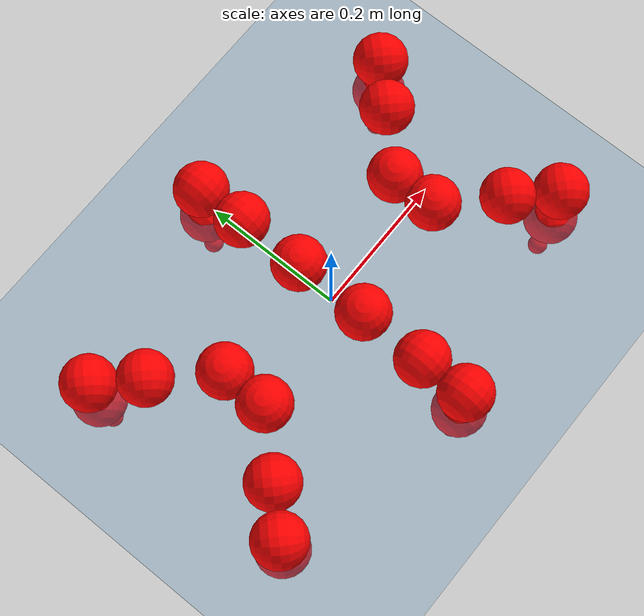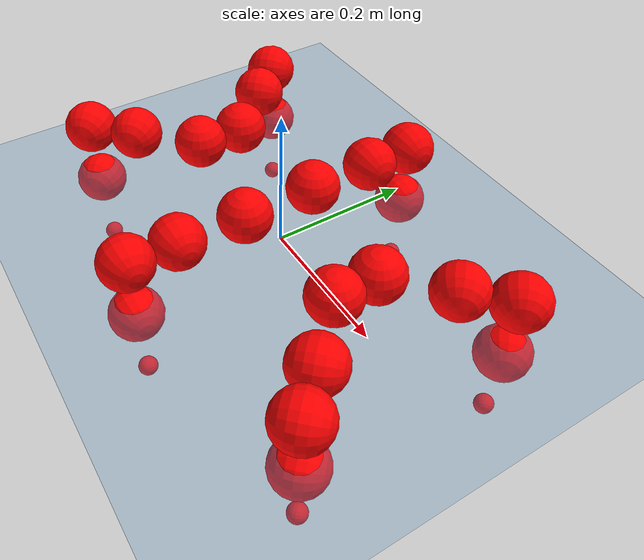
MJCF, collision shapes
<mujoco model="Golem">
  <compiler angle="radian" assetdir="assets" balanceinertia="true" inertiafromgeom="false"/>

  <option timestep="0.005" density="1.2" viscosity="2e-05"/>

  <size nkey="1"/>

  <visual>
    <quality shadowsize="8192"/>
    <map shadowclip="0.5"/>
  </visual>

  <default>
    <default class="/">
      <joint armature="0.01" damping="0.01" frictionloss="0.01"/>
      <geom contype="0" conaffinity="0" group="1" solref="-1000 -80"/>
      <site size="0.01 0.005 0.005" group="5"/>
      <general forcelimited="true" biastype="affine" gainprm="25" biasprm="0 -25 -0.5"/>
      <default class="visual">
        <geom type="mesh" group="2"/>
      </default>
      <default class="collision">
        <geom group="3"/>
      </default>
      <default class="foot">
        <geom size="0.01 0 0" condim="6" group="4" priority="1" solimp="0.015 1 0.01"/>
      </default>
      <default class="reward_collision_sphere">
        <geom group="5" rgba="1 0 0 1"/>
      </default>
    </default>
  </default>

  <asset>
    <texture type="skybox" colorspace="auto" name="//unnamed_texture_0" builtin="gradient" rgb1="0.95 0.95 0.95" rgb2="0.95 0.95 0.95" width="100" height="600"/>
    <texture type="2d" colorspace="auto" name="texplane" builtin="checker" rgb1="0.345 0.575 0.748" rgb2="0.345 0.575 0.748" markrgb="1 1 1" width="512" height="512"/>
    <material name="MatPlane" class="/" texture="texplane" texuniform="true" texrepeat="2 2" specular="0.9"/>
    <mesh name="body" class="/" file="body.stl" scale="0.001 0.001 0.001"/>
    <mesh name="coxa" class="/" file="coxa.stl" scale="0.001 0.001 0.001"/>
    <mesh name="femur" class="/" file="femur.stl" scale="0.001 0.001 0.001"/>
    <mesh name="tibia" class="/" file="tibia.stl" scale="0.001 0.001 0.001"/>
    <mesh name="tarsus" class="/" file="tarsus.stl" scale="0.001 0.001 0.001"/>
  </asset>

  <worldbody>
    <geom name="floor" class="/" size="100 100 0.125" type="plane" group="0" material="MatPlane"/>
    <light name="toplight_shadow" class="/" pos="0 0 5" dir="0.0990148 0.0990148 -0.990148" type="directional" ambient="0.04 0.04 0.04" diffuse="0.55 0.55 0.55" specular="0.12 0.12 0.12"/>
    <light name="toplight_fill" class="/" pos="0 0 5" dir="0.0990148 0.0990148 -0.990148" type="directional" castshadow="false" ambient="0.04 0.04 0.04" diffuse="0.3 0.3 0.3" specular="0.08 0.08 0.08"/>
    <body name="trunk" pos="-0.000475859 0.000149984 -0.000896776" quat="1 1.95933e-05 3.43917e-05 1.41217e-05">
      <inertial pos="0.000869546 -0.00088213 -0.00478342" quat="1 -4.35433e-05 -0.000221885 -0.000280542" mass="2.98163" diaginertia="0.0154041 0.00114106 0.0133463"/>
      <joint name="//unnamed_joint_0" type="free"/>
      <geom name="//unnamed_geom_1" class="/" pos="0 0 0.0679635" quat="1 0 0 0" type="mesh" rgba="0.9 0.9 0.9 1" mesh="body"/>
      <site name="imu" class="/" pos="0.140289 0.00422969 0.105253" size="0.00932978"/>
      <camera name="track" class="/" pos="0 -1.2972 0" quat="0.707107 0.707107 0 0" mode="trackcom"/>
      <camera name="ego_camera" class="/" pos="0.141493 0 0.106193" quat="-0.5 -0.5 0.5 0.5"/>
      <body name="coxa_RR" pos="-0.19353 -0.0549585 0.069048" quat="0.382693 8.28963e-05 0.000135649 -0.923875">
        <inertial pos="-9.01654e-05 -0.000614498 0.00106507" quat="0.999991 -0.000625776 0.00348341 -0.00249556" mass="0.161614" diaginertia="0.0152456 0.00115412 0.0135283"/>
        <joint name="coxa_joint_RR" class="/" pos="0 0 0" axis="-0.000467466 0.00201153 -0.999998" range="-3.14958 3.139" armature="0.00931909" damping="0.00408393" frictionloss="0.00912575"/>
        <geom name="//unnamed_geom_2" class="/" type="mesh" rgba="0.2 0.2 0.2 1" mesh="coxa"/>
        <geom name="//unnamed_geom_3" class="reward_collision_sphere" size="0.0373191" pos="-0.0326522 0 0"/>
        <body name="femur_RR" pos="0.0659762 0.00103949 -0.00124794" quat="0.49979 -0.50005 0.500058 0.500102">
          <inertial pos="0.000363605 -0.000402178 -0.000232703" quat="1 0.000193887 -2.33098e-05 -0.000300449" mass="0.160479" diaginertia="0.0150842 0.00113266 0.013327"/>
          <joint name="femur_joint_RR" class="/" pos="0 0 0" axis="0.000834476 -0.000157942 -1" range="-3.12268 3.12043" armature="0.00967599" damping="0.0002752" frictionloss="0.00931862"/>
          <geom name="//unnamed_geom_4" class="/" type="mesh" rgba="0.9 0.9 0.9 1" mesh="femur"/>
          <geom name="//unnamed_geom_5" class="reward_collision_sphere" size="0.0373191"/>
          <body name="tibia_RR" pos="0.000244677 -0.0711231 0.0013653" quat="2.02993e-05 1 -3.61417e-05 -6.56917e-06">
            <inertial pos="-0.000808716 0.00022752 0.000236552" quat="0.99999 0.00442625 -0.000567238 -7.53887e-05" mass="0.161709" diaginertia="0.0151221 0.0011282 0.013494"/>
            <joint name="tibia_joint_RR" class="/" pos="0 0 0" axis="0.000883092 -0.00320592 0.999994" range="-3.1233 3.11697" armature="0.00907787" damping="0" frictionloss="0.00954746"/>
            <geom name="//unnamed_geom_6" class="/" type="mesh" rgba="0.2 0.2 0.2 1" mesh="tibia"/>
            <geom name="//unnamed_geom_7" class="reward_collision_sphere" size="0.0373191"/>
            <body name="tarsus_RR" pos="0.096083 0.000361484 -0.000659598" quat="1 1.22376e-06 1.34276e-06 -3.4582e-06">
              <inertial pos="0.0662937 0.00187499 0.000195784" quat="0.500831 0.502693 0.497233 0.499228" mass="0.162107" diaginertia="0.015503 0.00114736 0.0135657"/>
              <joint name="tarsus_joint_RR" class="/" pos="0 0 0" axis="0.00746574 -0.00503422 0.999959" range="-3.12536 3.13812" armature="0.0091674" damping="0.0430887" frictionloss="0.00892676"/>
              <geom name="//unnamed_geom_8" class="/" type="mesh" rgba="0.9 0.9 0.9 1" mesh="tarsus"/>
              <geom name="foot_1" class="foot" size="0.00903091" pos="0.121902 0 0" quat="0 -0.707107 0 0.707107"/>
              <geom name="//unnamed_geom_10" class="reward_collision_sphere" size="0.0373191"/>
              <geom name="//unnamed_geom_11" class="reward_collision_sphere" size="0.0139947" pos="0.117004 0 0"/>
              <site name="foot_1" class="foot" pos="0.121902 0 0" quat="0 -0.707107 0 0.707107" size="0.00932978"/>
            </body>
          </body>
        </body>
      </body>
      <body name="coxa_RM" pos="-0.000688897 -0.0863904 0.0685028" quat="0.707161 2.73769e-05 -5.21867e-05 -0.707052">
        <inertial pos="-1.79216e-05 -0.000696937 0.000303143" quat="0.999999 0.000945433 -0.000878697 0.000273679" mass="0.164553" diaginertia="0.0153066 0.00115525 0.0135338"/>
        <joint name="coxa_joint_RM" class="/" pos="0 0 0" axis="-0.00222047 0.00259171 -0.999994" range="-3.14683 3.13686" armature="0.00919751" damping="0.0100484" frictionloss="0.00889803"/>
        <geom name="//unnamed_geom_12" class="/" type="mesh" rgba="0.2 0.2 0.2 1" mesh="coxa"/>
        <geom name="//unnamed_geom_13" class="reward_collision_sphere" size="0.0373191" pos="-0.0326522 0 0"/>
        <body name="femur_RM" pos="0.0628916 -0.00133356 0.000433248" quat="0.499731 -0.500003 0.500229 0.500037">
          <inertial pos="-0.000301324 0.000639132 -0.000529452" quat="0.999999 -0.000320981 -0.0014629 -0.000592444" mass="0.162269" diaginertia="0.0152077 0.00114835 0.0134631"/>
          <joint name="femur_joint_RM" class="/" pos="0 0 0" axis="-0.00204547 -9.3465e-05 -0.999998" range="-3.13342 3.15568" armature="0.0092397" damping="0.00179067" frictionloss="0.00946953"/>
          <geom name="//unnamed_geom_14" class="/" type="mesh" rgba="0.9 0.9 0.9 1" mesh="femur"/>
          <geom name="//unnamed_geom_15" class="reward_collision_sphere" size="0.0373191"/>
          <body name="tibia_RM" pos="5.93918e-05 -0.0686755 -2.41231e-05" quat="-4.85617e-06 1 -2.55453e-05 -1.81544e-05">
            <inertial pos="-0.00067148 -0.00125189 -0.000450883" quat="0.999993 -0.000551664 0.00299925 -0.00194162" mass="0.16298" diaginertia="0.0153569 0.00114958 0.0134276"/>
            <joint name="tibia_joint_RM" class="/" pos="0 0 0" axis="0.000564187 0.00172755 0.999998" range="-3.14541 3.1218" armature="0.00894295" damping="0.00639018" frictionloss="0.00890993"/>
            <geom name="//unnamed_geom_16" class="/" type="mesh" rgba="0.2 0.2 0.2 1" mesh="tibia"/>
            <geom name="//unnamed_geom_17" class="reward_collision_sphere" size="0.0373191"/>
            <body name="tarsus_RM" pos="0.0962659 0.000552767 0.000630988" quat="1 -0.000106675 -8.91689e-06 1.75938e-05">
              <inertial pos="0.065784 -0.000451996 -0.000230336" quat="0.499804 0.500308 0.499672 0.500216" mass="0.160635" diaginertia="0.0150131 0.00112888 0.0133779"/>
              <joint name="tarsus_joint_RM" class="/" pos="0 0 0" axis="-0.00100741 0.00200731 0.999997" range="-3.13823 3.14363" armature="0.00923827" damping="0.00738237" frictionloss="0.00944089"/>
              <geom name="//unnamed_geom_18" class="/" type="mesh" rgba="0.9 0.9 0.9 1" mesh="tarsus"/>
              <geom name="foot_2" class="foot" size="0.00959634" pos="0.121902 0 0" quat="0 -0.707107 0 0.707107"/>
              <geom name="//unnamed_geom_20" class="reward_collision_sphere" size="0.0373191"/>
              <geom name="//unnamed_geom_21" class="reward_collision_sphere" size="0.0139947" pos="0.117004 0 0"/>
              <site name="foot_2" class="foot" pos="0.121902 0 0" quat="0 -0.707107 0 0.707107" size="0.00932978"/>
            </body>
          </body>
        </body>
      </body>
      <body name="coxa_RF" pos="0.194619 -0.0549392 0.0682102" quat="0.923866 1.03954e-05 0.000107481 -0.382716">
        <inertial pos="0.000160964 -0.000325578 -8.73711e-05" quat="0.999998 0.0006111 -0.00170356 -0.000435554" mass="0.162009" diaginertia="0.0153552 0.00115321 0.0134853"/>
        <joint name="coxa_joint_RF" class="/" pos="0 0 0" axis="0.000880204 -0.000387101 -1" range="-3.12055 3.13251" armature="0.00973282" damping="0.00748427" frictionloss="0.00931913"/>
        <geom name="//unnamed_geom_22" class="/" type="mesh" rgba="0.2 0.2 0.2 1" mesh="coxa"/>
        <geom name="//unnamed_geom_23" class="reward_collision_sphere" size="0.0373191" pos="-0.0326522 0 0"/>
        <body name="femur_RF" pos="0.0652728 -0.00024802 -0.00100611" quat="0.500017 -0.499989 0.499999 0.499995">
          <inertial pos="-9.77966e-05 -0.000775956 0.000556042" quat="1 -0.000364501 -8.71611e-05 0.000223829" mass="0.163229" diaginertia="0.0153361 0.00115603 0.0135219"/>
          <joint name="femur_joint_RF" class="/" pos="0 0 0" axis="0.000243151 -7.12124e-05 -1" range="-3.14032 3.13387" armature="0.00893535" damping="0.000447294" frictionloss="0.00915727"/>
          <geom name="//unnamed_geom_24" class="/" type="mesh" rgba="0.9 0.9 0.9 1" mesh="femur"/>
          <geom name="//unnamed_geom_25" class="reward_collision_sphere" size="0.0373191"/>
          <body name="tibia_RF" pos="-0.000559712 -0.0697248 -0.00125425" quat="-4.86039e-05 1 1.8772e-05 6.88654e-05">
            <inertial pos="-0.000224138 -0.000495894 -0.000413701" quat="1 -0.00023722 0.000146798 -0.000136949" mass="0.162407" diaginertia="0.0154858 0.00116281 0.0134489"/>
            <joint name="tibia_joint_RF" class="/" pos="0 0 0" axis="-0.000384823 3.06005e-05 1" range="-3.13533 3.12901" armature="0.00905946" damping="0.0130146" frictionloss="0.00951698"/>
            <geom name="//unnamed_geom_26" class="/" type="mesh" rgba="0.2 0.2 0.2 1" mesh="tibia"/>
            <geom name="//unnamed_geom_27" class="reward_collision_sphere" size="0.0373191"/>
            <body name="tarsus_RF" pos="0.0948125 0.000119416 0.000980565" quat="1 -0.000169353 -0.000100019 -0.000188031">
              <inertial pos="0.0653177 -0.000311889 -0.000343355" quat="0.499773 0.496534 0.503101 0.500569" mass="0.163822" diaginertia="0.0153732 0.00113919 0.0135368"/>
              <joint name="tarsus_joint_RF" class="/" pos="0 0 0" axis="-0.000815843 -0.000157543 1" range="-3.12996 3.13479" armature="0.00986483" damping="0" frictionloss="0.00930955"/>
              <geom name="//unnamed_geom_28" class="/" type="mesh" rgba="0.9 0.9 0.9 1" mesh="tarsus"/>
              <geom name="foot_3" class="foot" size="0.00937235" pos="0.121902 0 0" quat="0 -0.707107 0 0.707107"/>
              <geom name="//unnamed_geom_30" class="reward_collision_sphere" size="0.0373191"/>
              <geom name="//unnamed_geom_31" class="reward_collision_sphere" size="0.0139947" pos="0.117004 0 0"/>
              <site name="foot_3" class="foot" pos="0.121902 0 0" quat="0 -0.707107 0 0.707107" size="0.00932978"/>
            </body>
          </body>
        </body>
      </body>
      <body name="coxa_LR" pos="-0.192882 0.056464 0.0691145" quat="0.382571 -8.65003e-05 -0.000299615 0.923926">
        <inertial pos="0.000155849 -0.00100417 0.000197968" quat="0.999998 -0.00134369 0.0016748 -0.000331248" mass="0.161625" diaginertia="0.01524 0.00114426 0.013362"/>
        <joint name="coxa_joint_LR" class="/" pos="0 0 0" axis="-0.00371647 -0.000700889 -0.999993" range="-3.12447 3.14815" armature="0.00922211" damping="0.00764151" frictionloss="0.00911374"/>
        <geom name="//unnamed_geom_32" class="/" type="mesh" rgba="0.2 0.2 0.2 1" mesh="coxa"/>
        <geom name="//unnamed_geom_33" class="reward_collision_sphere" size="0.0373191" pos="-0.0326522 0 0"/>
        <body name="femur_LR" pos="0.0670579 -0.00186616 -0.00103579" quat="0.499672 -0.50032 0.500005 0.500003">
          <inertial pos="-0.000200801 -2.73652e-05 0.00025886" quat="0.999997 0.00169467 0.00163685 0.000354163" mass="0.16327" diaginertia="0.0151373 0.00114086 0.0135931"/>
          <joint name="femur_joint_LR" class="/" pos="0 0 0" axis="-0.00164858 0.00191051 0.999997" range="-3.12081 3.14741" armature="0.00895359" damping="0.00863937" frictionloss="0.00920785"/>
          <geom name="//unnamed_geom_34" class="/" type="mesh" rgba="0.9 0.9 0.9 1" mesh="femur"/>
          <geom name="//unnamed_geom_35" class="reward_collision_sphere" size="0.0373191"/>
          <body name="tibia_LR" pos="0.000979913 -0.0709976 -0.00125976" quat="0.000469157 1 9.63556e-05 0.00028046">
            <inertial pos="-0.000166121 -0.000561071 -0.000337271" quat="0.99999 0.00351582 0.00188549 -0.00206826" mass="0.161966" diaginertia="0.0150853 0.0011349 0.0134509"/>
            <joint name="tibia_joint_LR" class="/" pos="0 0 0" axis="-0.00036034 0.000719381 -1" range="-3.13062 3.12107" armature="0.00972238" damping="0" frictionloss="0.00891846"/>
            <geom name="//unnamed_geom_36" class="/" type="mesh" rgba="0.2 0.2 0.2 1" mesh="tibia"/>
            <geom name="//unnamed_geom_37" class="reward_collision_sphere" size="0.0373191"/>
            <body name="tarsus_LR" pos="0.0961096 0.000900577 0.000993013" quat="1 -2.20961e-05 8.05061e-05 3.68805e-06">
              <inertial pos="0.0649685 0.000273027 -0.000241296" quat="0.503203 0.500269 0.497352 0.499158" mass="0.159641" diaginertia="0.0151973 0.0011387 0.0134143"/>
              <joint name="tarsus_joint_LR" class="/" pos="0 0 0" axis="0.000391594 -0.00242382 -0.999997" range="-3.1377 3.14114" armature="0.00930613" damping="0.0291587" frictionloss="0.00927708"/>
              <geom name="//unnamed_geom_38" class="/" type="mesh" rgba="0.9 0.9 0.9 1" mesh="tarsus"/>
              <geom name="foot_4" class="foot" size="0.00933769" pos="0.121902 0 0" quat="0.707107 0 -0.707107 0"/>
              <geom name="//unnamed_geom_40" class="reward_collision_sphere" size="0.0373191"/>
              <geom name="//unnamed_geom_41" class="reward_collision_sphere" size="0.0139947" pos="0.117004 0 0"/>
              <site name="foot_4" class="foot" pos="0.121902 0 0" quat="0.707107 0 -0.707107 0" size="0.00932978"/>
            </body>
          </body>
        </body>
      </body>
      <body name="coxa_LM" pos="-0.00160446 0.0838825 0.0693015" quat="0.70738 6.30155e-05 -0.000470692 0.706833">
        <inertial pos="0.000556126 -8.89594e-05 0.00154564" quat="1 0.000189494 -0.000299729 0.000133537" mass="0.163061" diaginertia="0.0153326 0.00114118 0.013561"/>
        <joint name="coxa_joint_LM" class="/" pos="0 0 0" axis="0.000284911 -2.59447e-05 -1" range="-3.13835 3.13867" armature="0.009466" damping="0.00539393" frictionloss="0.00972738"/>
        <geom name="//unnamed_geom_42" class="/" type="mesh" rgba="0.2 0.2 0.2 1" mesh="coxa"/>
        <geom name="//unnamed_geom_43" class="reward_collision_sphere" size="0.0373191" pos="-0.0326522 0 0"/>
        <body name="femur_LM" pos="0.0622009 0.000811367 -0.000711589" quat="0.499993 -0.499984 0.500028 0.499995">
          <inertial pos="-0.000493298 -0.000840478 0.000147728" quat="1 0.000142496 0.000201738 6.58337e-05" mass="0.162532" diaginertia="0.0151407 0.00115047 0.0135968"/>
          <joint name="femur_joint_LM" class="/" pos="0 0 0" axis="-0.00466778 0.00159346 0.999988" range="-3.13248 3.14951" armature="0.0089604" damping="0.00516347" frictionloss="0.00895368"/>
          <geom name="//unnamed_geom_44" class="/" type="mesh" rgba="0.9 0.9 0.9 1" mesh="femur"/>
          <geom name="//unnamed_geom_45" class="reward_collision_sphere" size="0.0373191"/>
          <body name="tibia_LM" pos="0.000379309 -0.0679337 0.00112927" quat="3.0756e-05 1 3.12588e-05 2.04088e-05">
            <inertial pos="0.000864471 -0.00126431 0.000904749" quat="0.999989 0.000809615 -0.00371997 0.00283219" mass="0.161973" diaginertia="0.0153927 0.00114152 0.0135976"/>
            <joint name="tibia_joint_LM" class="/" pos="0 0 0" axis="-0.00375963 -0.00040871 -0.999993" range="-3.13781 3.13622" armature="0.00927868" damping="0.00246012" frictionloss="0.0093434"/>
            <geom name="//unnamed_geom_46" class="/" type="mesh" rgba="0.2 0.2 0.2 1" mesh="tibia"/>
            <geom name="//unnamed_geom_47" class="reward_collision_sphere" size="0.0373191"/>
            <body name="tarsus_LM" pos="0.0956774 -0.000201266 -0.000903402" quat="1 -9.69696e-05 -5.18007e-05 -5.29336e-05">
              <inertial pos="0.0668578 0.000193373 0.000179534" quat="0.501131 0.49988 0.497667 0.501313" mass="0.16286" diaginertia="0.0153173 0.00116028 0.0137208"/>
              <joint name="tarsus_joint_LM" class="/" pos="0 0 0" axis="0.000510888 0.000144857 -1" range="-3.13191 3.13808" armature="0.0095367" damping="0.000329878" frictionloss="0.00930404"/>
              <geom name="//unnamed_geom_48" class="/" type="mesh" rgba="0.9 0.9 0.9 1" mesh="tarsus"/>
              <geom name="foot_5" class="foot" size="0.00951908" pos="0.121902 0 0" quat="0.707107 0 -0.707107 0"/>
              <geom name="//unnamed_geom_50" class="reward_collision_sphere" size="0.0373191"/>
              <geom name="//unnamed_geom_51" class="reward_collision_sphere" size="0.0139947" pos="0.117004 0 0"/>
              <site name="foot_5" class="foot" pos="0.121902 0 0" quat="0.707107 0 -0.707107 0" size="0.00932978"/>
            </body>
          </body>
        </body>
      </body>
      <body name="coxa_LF" pos="0.194049 0.0536938 0.067805" quat="0.923905 5.21534e-05 -1.89228e-06 0.382623">
        <inertial pos="7.82815e-05 -0.000288479 -0.000285263" quat="0.999989 -0.0028458 -0.000328972 -0.00367855" mass="0.164498" diaginertia="0.0155104 0.00115945 0.0134522"/>
        <joint name="coxa_joint_LF" class="/" pos="0 0 0" axis="0.000284477 9.6575e-05 -1" range="-3.13897 3.14119" armature="0.00922789" damping="0.00407496" frictionloss="0.00956094"/>
        <geom name="//unnamed_geom_52" class="/" type="mesh" rgba="0.2 0.2 0.2 1" mesh="coxa"/>
        <geom name="//unnamed_geom_53" class="reward_collision_sphere" size="0.0373191" pos="-0.0326522 0 0"/>
        <body name="femur_LF" pos="0.0645484 -0.000982582 -0.00148778" quat="0.499974 -0.50002 0.500088 0.499918">
          <inertial pos="0.000116317 0.000348697 0.000368534" quat="0.999999 -0.000118409 0.00124477 -0.000356452" mass="0.161489" diaginertia="0.0153246 0.00114569 0.0134869"/>
          <joint name="femur_joint_LF" class="/" pos="0 0 0" axis="-0.00561152 0.00491655 0.999972" range="-3.13932 3.15848" armature="0.0089426" damping="0.000507772" frictionloss="0.00918651"/>
          <geom name="//unnamed_geom_54" class="/" type="mesh" rgba="0.9 0.9 0.9 1" mesh="femur"/>
          <geom name="//unnamed_geom_55" class="reward_collision_sphere" size="0.0373191"/>
          <body name="tibia_LF" pos="0.000839086 -0.0694933 0.000293193" quat="0.000288273 1 0.000142373 5.00044e-05">
            <inertial pos="-0.000266171 0.000139153 0.000117693" quat="1 7.49973e-06 -0.000108918 -4.34096e-05" mass="0.162689" diaginertia="0.0153374 0.0011445 0.0135022"/>
            <joint name="tibia_joint_LF" class="/" pos="0 0 0" axis="0.00162376 -0.00486771 -0.999987" range="-3.13009 3.1228" armature="0.00916917" damping="0.00325522" frictionloss="0.00931352"/>
            <geom name="//unnamed_geom_56" class="/" type="mesh" rgba="0.2 0.2 0.2 1" mesh="tibia"/>
            <geom name="//unnamed_geom_57" class="reward_collision_sphere" size="0.0373191"/>
            <body name="tarsus_LF" pos="0.0957815 -0.000181511 0.000808555" quat="1 0.000291221 0.000139961 -6.55123e-06">
              <inertial pos="0.0666107 -0.000533202 -0.000364645" quat="0.500492 0.49994 0.499998 0.49957" mass="0.162166" diaginertia="0.0153394 0.00115357 0.0134031"/>
              <joint name="tarsus_joint_LF" class="/" pos="0 0 0" axis="-0.00654663 0.00125732 -0.999978" stiffness="0.0256037" range="-3.14393 3.14673" armature="0.0092894" damping="0.00413326" frictionloss="0.00945573"/>
              <geom name="//unnamed_geom_58" class="/" type="mesh" rgba="0.9 0.9 0.9 1" mesh="tarsus"/>
              <geom name="foot_6" class="foot" size="0.00924329" pos="0.121902 0 0" quat="0.707107 0 -0.707107 0"/>
              <geom name="//unnamed_geom_60" class="reward_collision_sphere" size="0.0373191"/>
              <geom name="//unnamed_geom_61" class="reward_collision_sphere" size="0.0139947" pos="0.117004 0 0"/>
              <site name="foot_6" class="foot" pos="0.121902 0 0" quat="0.707107 0 -0.707107 0" size="0.00932978"/>
            </body>
          </body>
        </body>
      </body>
    </body>
  </worldbody>

  <contact>
    <pair class="/" geom1="floor" geom2="foot_1" name="//unnamed_contact_0"/>
    <pair class="/" geom1="floor" geom2="foot_2" name="//unnamed_contact_1"/>
    <pair class="/" geom1="floor" geom2="foot_3" name="//unnamed_contact_2"/>
    <pair class="/" geom1="floor" geom2="foot_4" name="//unnamed_contact_3"/>
    <pair class="/" geom1="floor" geom2="foot_5" name="//unnamed_contact_4"/>
    <pair class="/" geom1="floor" geom2="foot_6" name="//unnamed_contact_5"/>
  </contact>

  <actuator>
    <general name="coxa_joint_RR" class="/" joint="coxa_joint_RR" forcerange="-6.66074 6.66074" gainprm="22.6021" biasprm="0 -22.6021 -0.479766"/>
    <general name="femur_joint_RR" class="/" joint="femur_joint_RR" forcerange="-7.02837 7.02837" gainprm="22.6021" biasprm="0 -22.6021 -0.479766"/>
    <general name="tibia_joint_RR" class="/" joint="tibia_joint_RR" forcerange="-6.65463 6.65463" gainprm="22.6021" biasprm="0 -22.6021 -0.479766"/>
    <general name="tarsus_joint_RR" class="/" joint="tarsus_joint_RR" forcerange="-7.03185 7.03185" gainprm="22.6021" biasprm="0 -22.6021 -0.479766"/>
    <general name="coxa_joint_RM" class="/" joint="coxa_joint_RM" forcerange="-6.80335 6.80335" gainprm="22.6021" biasprm="0 -22.6021 -0.479766"/>
    <general name="femur_joint_RM" class="/" joint="femur_joint_RM" forcerange="-6.7339 6.7339" gainprm="22.6021" biasprm="0 -22.6021 -0.479766"/>
    <general name="tibia_joint_RM" class="/" joint="tibia_joint_RM" forcerange="-6.57251 6.57251" gainprm="22.6021" biasprm="0 -22.6021 -0.479766"/>
    <general name="tarsus_joint_RM" class="/" joint="tarsus_joint_RM" forcerange="-6.80122 6.80122" gainprm="22.6021" biasprm="0 -22.6021 -0.479766"/>
    <general name="coxa_joint_RF" class="/" joint="coxa_joint_RF" forcerange="-6.88525 6.88525" gainprm="22.6021" biasprm="0 -22.6021 -0.479766"/>
    <general name="femur_joint_RF" class="/" joint="femur_joint_RF" forcerange="-7.0556 7.0556" gainprm="22.6021" biasprm="0 -22.6021 -0.479766"/>
    <general name="tibia_joint_RF" class="/" joint="tibia_joint_RF" forcerange="-6.5983 6.5983" gainprm="22.6021" biasprm="0 -22.6021 -0.479766"/>
    <general name="tarsus_joint_RF" class="/" joint="tarsus_joint_RF" forcerange="-7.04486 7.04486" gainprm="22.6021" biasprm="0 -22.6021 -0.479766"/>
    <general name="coxa_joint_LR" class="/" joint="coxa_joint_LR" forcerange="-6.87671 6.87671" gainprm="22.6021" biasprm="0 -22.6021 -0.479766"/>
    <general name="femur_joint_LR" class="/" joint="femur_joint_LR" forcerange="-6.70997 6.70997" gainprm="22.6021" biasprm="0 -22.6021 -0.479766"/>
    <general name="tibia_joint_LR" class="/" joint="tibia_joint_LR" forcerange="-6.58389 6.58389" gainprm="22.6021" biasprm="0 -22.6021 -0.479766"/>
    <general name="tarsus_joint_LR" class="/" joint="tarsus_joint_LR" forcerange="-6.76378 6.76378" gainprm="22.6021" biasprm="0 -22.6021 -0.479766"/>
    <general name="coxa_joint_LM" class="/" joint="coxa_joint_LM" forcerange="-6.60928 6.60928" gainprm="22.6021" biasprm="0 -22.6021 -0.479766"/>
    <general name="femur_joint_LM" class="/" joint="femur_joint_LM" forcerange="-6.78494 6.78494" gainprm="22.6021" biasprm="0 -22.6021 -0.479766"/>
    <general name="tibia_joint_LM" class="/" joint="tibia_joint_LM" forcerange="-6.71675 6.71675" gainprm="22.6021" biasprm="0 -22.6021 -0.479766"/>
    <general name="tarsus_joint_LM" class="/" joint="tarsus_joint_LM" forcerange="-7.00076 7.00076" gainprm="22.6021" biasprm="0 -22.6021 -0.479766"/>
    <general name="coxa_joint_LF" class="/" joint="coxa_joint_LF" forcerange="-6.74366 6.74366" gainprm="22.6021" biasprm="0 -22.6021 -0.479766"/>
    <general name="femur_joint_LF" class="/" joint="femur_joint_LF" forcerange="-6.84201 6.84201" gainprm="22.6021" biasprm="0 -22.6021 -0.479766"/>
    <general name="tibia_joint_LF" class="/" joint="tibia_joint_LF" forcerange="-6.80834 6.80834" gainprm="22.6021" biasprm="0 -22.6021 -0.479766"/>
    <general name="tarsus_joint_LF" class="/" joint="tarsus_joint_LF" forcerange="-6.81418 6.81418" gainprm="22.6021" biasprm="0 -22.6021 -0.479766"/>
  </actuator>

  <sensor>
    <gyro site="imu" name="imu_angular_velocity"/>
    <velocimeter site="imu" name="imu_linear_velocity"/>
    <framelinvel objtype="site" objname="foot_1" name="foot_1_global_linear_velocity"/>
    <framelinvel objtype="site" objname="foot_2" name="foot_2_global_linear_velocity"/>
    <framelinvel objtype="site" objname="foot_3" name="foot_3_global_linear_velocity"/>
    <framelinvel objtype="site" objname="foot_4" name="foot_4_global_linear_velocity"/>
    <framelinvel objtype="site" objname="foot_5" name="foot_5_global_linear_velocity"/>
    <framelinvel objtype="site" objname="foot_6" name="foot_6_global_linear_velocity"/>
  </sensor>

  <keyframe>
    <key name="home" qpos="0 0 0.1457 1 0 0 0 0 0 0 0 0 0 0 0 0 0 0 0 0 0 0 0 0 0 0 0 0 0 0 0"/>
  </keyframe>
</mujoco>
